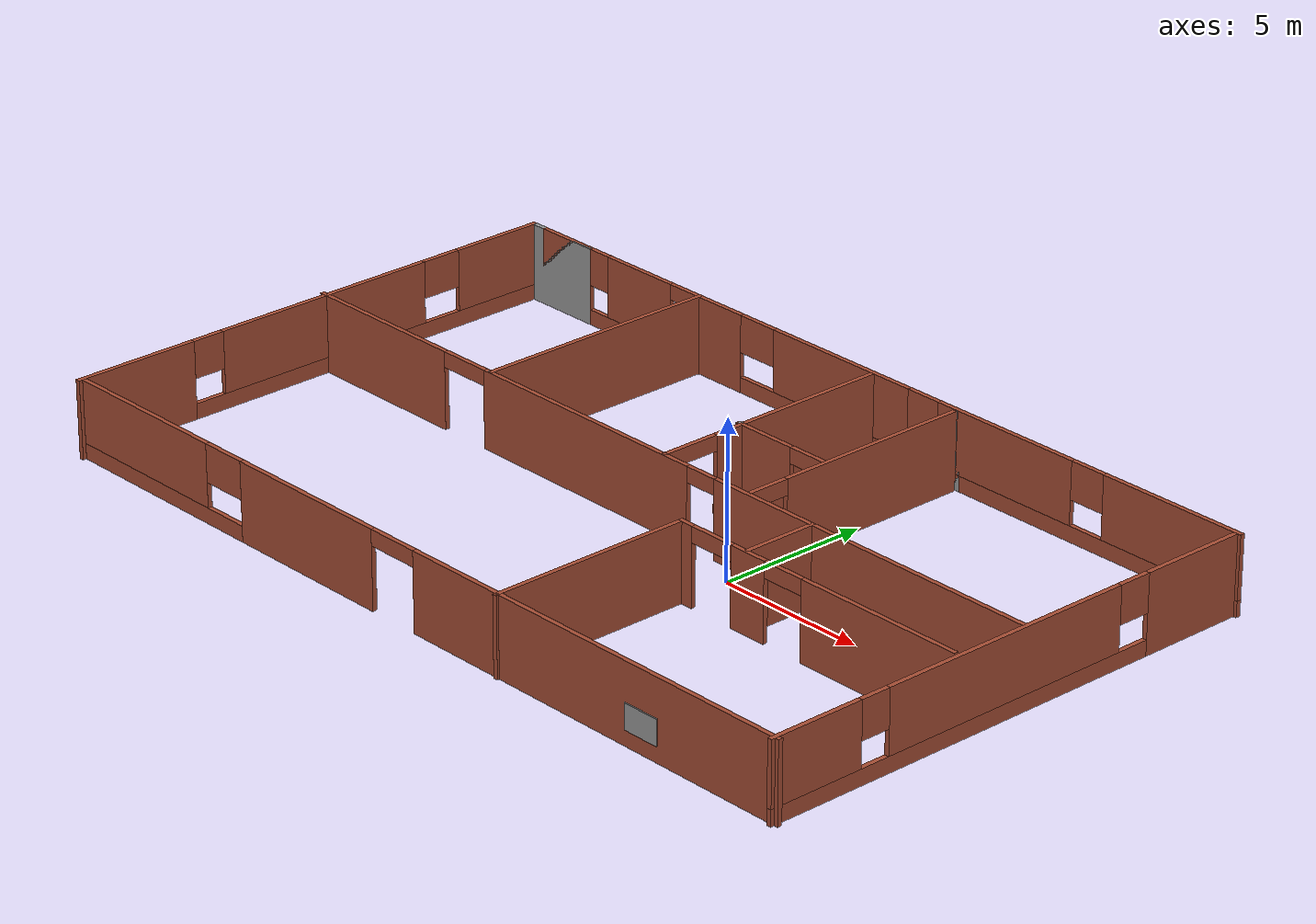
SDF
<?xml version='1.0'?>
<sdf version='1.7'>
  <model name='home'>
    <pose>-3.83983 0.260073 0 0 -0 0</pose>
    <link name='Wall_0'>
      <pose>0.359938 8.61553 0 0 -0 0</pose>
      <visual name='Wall_0_Visual_0'>
        <pose>-13.176 0 1.25 0 -0 0</pose>
        <geometry>
          <box>
            <size>2.14806 0.15 2.5</size>
          </box>
        </geometry>
        <material>
          <script>
            <uri>file://media/materials/scripts/gazebo.material</uri>
            <name>Gazebo/Bricks</name>
          </script>
          <ambient>1 1 1 1</ambient>
        </material>
        <meta>
          <layer>0</layer>
        </meta>
      </visual>
      <collision name='Wall_0_Collision_0'>
        <geometry>
          <box>
            <size>2.14806 0.15 2.5</size>
          </box>
        </geometry>
        <pose>-13.176 0 1.25 0 -0 0</pose>
      </collision>
      <visual name='Wall_0_Visual_1'>
        <pose>-6.35296 0 1.25 0 -0 0</pose>
        <geometry>
          <box>
            <size>1.86866 0.15 2.5</size>
          </box>
        </geometry>
        <material>
          <script>
            <uri>file://media/materials/scripts/gazebo.material</uri>
            <name>Gazebo/Bricks</name>
          </script>
          <ambient>1 1 1 1</ambient>
        </material>
        <meta>
          <layer>0</layer>
        </meta>
      </visual>
      <collision name='Wall_0_Collision_1'>
        <geometry>
          <box>
            <size>1.86866 0.15 2.5</size>
          </box>
        </geometry>
        <pose>-6.35296 0 1.25 0 -0 0</pose>
      </collision>
      <visual name='Wall_0_Visual_2'>
        <pose>-10.306 0 0.25 0 -0 0</pose>
        <geometry>
          <box>
            <size>3.59185 0.15 0.5</size>
          </box>
        </geometry>
        <material>
          <script>
            <uri>file://media/materials/scripts/gazebo.material</uri>
            <name>Gazebo/Bricks</name>
          </script>
          <ambient>1 1 1 1</ambient>
        </material>
        <meta>
          <layer>0</layer>
        </meta>
      </visual>
      <collision name='Wall_0_Collision_2'>
        <geometry>
          <box>
            <size>3.59185 0.15 0.5</size>
          </box>
        </geometry>
        <pose>-10.306 0 0.25 0 -0 0</pose>
      </collision>
      <visual name='Wall_0_Visual_3'>
        <pose>4.41569 0 0.25 0 -0 0</pose>
        <geometry>
          <box>
            <size>19.6686 0.15 0.5</size>
          </box>
        </geometry>
        <material>
          <script>
            <uri>file://media/materials/scripts/gazebo.material</uri>
            <name>Gazebo/Bricks</name>
          </script>
          <ambient>1 1 1 1</ambient>
        </material>
        <meta>
          <layer>0</layer>
        </meta>
      </visual>
      <collision name='Wall_0_Collision_3'>
        <geometry>
          <box>
            <size>19.6686 0.15 0.5</size>
          </box>
        </geometry>
        <pose>4.41569 0 0.25 0 -0 0</pose>
      </collision>
      <visual name='Wall_0_Visual_4'>
        <pose>-9.90602 0 1.5 0 -0 0</pose>
        <geometry>
          <box>
            <size>2.79185 0.15 2</size>
          </box>
        </geometry>
        <material>
          <script>
            <uri>file://media/materials/scripts/gazebo.material</uri>
            <name>Gazebo/Bricks</name>
          </script>
          <ambient>1 1 1 1</ambient>
        </material>
        <meta>
          <layer>0</layer>
        </meta>
      </visual>
      <collision name='Wall_0_Collision_4'>
        <geometry>
          <box>
            <size>2.79185 0.15 2</size>
          </box>
        </geometry>
        <pose>-9.90602 0 1.5 0 -0 0</pose>
      </collision>
      <visual name='Wall_0_Visual_5'>
        <pose>-9.90602 0 1.5 0 -0 0</pose>
        <geometry>
          <box>
            <size>2.79185 0.15 2</size>
          </box>
        </geometry>
        <material>
          <script>
            <uri>file://media/materials/scripts/gazebo.material</uri>
            <name>Gazebo/Bricks</name>
          </script>
          <ambient>1 1 1 1</ambient>
        </material>
        <meta>
          <layer>0</layer>
        </meta>
      </visual>
      <collision name='Wall_0_Collision_5'>
        <geometry>
          <box>
            <size>2.79185 0.15 2</size>
          </box>
        </geometry>
        <pose>-9.90602 0 1.5 0 -0 0</pose>
      </collision>
      <visual name='Wall_0_Visual_6'>
        <pose>-1.21828 0 1.5 0 -0 0</pose>
        <geometry>
          <box>
            <size>5.57656 0.15 2</size>
          </box>
        </geometry>
        <material>
          <script>
            <uri>file://media/materials/scripts/gazebo.material</uri>
            <name>Gazebo/Bricks</name>
          </script>
          <ambient>1 1 1 1</ambient>
        </material>
        <meta>
          <layer>0</layer>
        </meta>
      </visual>
      <collision name='Wall_0_Collision_6'>
        <geometry>
          <box>
            <size>5.57656 0.15 2</size>
          </box>
        </geometry>
        <pose>-1.21828 0 1.5 0 -0 0</pose>
      </collision>
      <visual name='Wall_0_Visual_7'>
        <pose>5.38737 0 1.5 0 -0 0</pose>
        <geometry>
          <box>
            <size>5.21864 0.15 2</size>
          </box>
        </geometry>
        <material>
          <script>
            <uri>file://media/materials/scripts/gazebo.material</uri>
            <name>Gazebo/Bricks</name>
          </script>
          <ambient>1 1 1 1</ambient>
        </material>
        <meta>
          <layer>0</layer>
        </meta>
      </visual>
      <collision name='Wall_0_Collision_7'>
        <geometry>
          <box>
            <size>5.21864 0.15 2</size>
          </box>
        </geometry>
        <pose>5.38737 0 1.5 0 -0 0</pose>
      </collision>
      <visual name='Wall_0_Visual_8'>
        <pose>11.7274 0 1.5 0 -0 0</pose>
        <geometry>
          <box>
            <size>5.04527 0.15 2</size>
          </box>
        </geometry>
        <material>
          <script>
            <uri>file://media/materials/scripts/gazebo.material</uri>
            <name>Gazebo/Bricks</name>
          </script>
          <ambient>1 1 1 1</ambient>
        </material>
        <meta>
          <layer>0</layer>
        </meta>
      </visual>
      <collision name='Wall_0_Collision_8'>
        <geometry>
          <box>
            <size>5.04527 0.15 2</size>
          </box>
        </geometry>
        <pose>11.7274 0 1.5 0 -0 0</pose>
      </collision>
      <visual name='Wall_0_Visual_9'>
        <pose>-11.7019 0 1.9 0 -0 0</pose>
        <geometry>
          <box>
            <size>0.8 0.15 1.2</size>
          </box>
        </geometry>
        <material>
          <script>
            <uri>file://media/materials/scripts/gazebo.material</uri>
            <name>Gazebo/Bricks</name>
          </script>
          <ambient>1 1 1 1</ambient>
        </material>
        <meta>
          <layer>0</layer>
        </meta>
      </visual>
      <collision name='Wall_0_Collision_9'>
        <geometry>
          <box>
            <size>0.8 0.15 1.2</size>
          </box>
        </geometry>
        <pose>-11.7019 0 1.9 0 -0 0</pose>
      </collision>
      <visual name='Wall_0_Visual_10'>
        <pose>-4.71259 0 1.9 0 -0 0</pose>
        <geometry>
          <box>
            <size>1.41206 0.15 1.2</size>
          </box>
        </geometry>
        <material>
          <script>
            <uri>file://media/materials/scripts/gazebo.material</uri>
            <name>Gazebo/Bricks</name>
          </script>
          <ambient>1 1 1 1</ambient>
        </material>
        <meta>
          <layer>0</layer>
        </meta>
      </visual>
      <collision name='Wall_0_Collision_10'>
        <geometry>
          <box>
            <size>1.41206 0.15 1.2</size>
          </box>
        </geometry>
        <pose>-4.71259 0 1.9 0 -0 0</pose>
      </collision>
      <visual name='Wall_0_Visual_11'>
        <pose>2.17402 0 1.9 0 -0 0</pose>
        <geometry>
          <box>
            <size>1.20804 0.15 1.2</size>
          </box>
        </geometry>
        <material>
          <script>
            <uri>file://media/materials/scripts/gazebo.material</uri>
            <name>Gazebo/Bricks</name>
          </script>
          <ambient>1 1 1 1</ambient>
        </material>
        <meta>
          <layer>0</layer>
        </meta>
      </visual>
      <collision name='Wall_0_Collision_11'>
        <geometry>
          <box>
            <size>1.20804 0.15 1.2</size>
          </box>
        </geometry>
        <pose>2.17402 0 1.9 0 -0 0</pose>
      </collision>
      <visual name='Wall_0_Visual_12'>
        <pose>8.60071 0 1.9 0 -0 0</pose>
        <geometry>
          <box>
            <size>1.20804 0.15 1.2</size>
          </box>
        </geometry>
        <material>
          <script>
            <uri>file://media/materials/scripts/gazebo.material</uri>
            <name>Gazebo/Bricks</name>
          </script>
          <ambient>1 1 1 1</ambient>
        </material>
        <meta>
          <layer>0</layer>
        </meta>
      </visual>
      <collision name='Wall_0_Collision_12'>
        <geometry>
          <box>
            <size>1.20804 0.15 1.2</size>
          </box>
        </geometry>
        <pose>8.60071 0 1.9 0 -0 0</pose>
      </collision>
      <visual name='Wall_0_Visual_13'>
        <pose>-7.89869 0 2.25 0 -0 0</pose>
        <geometry>
          <box>
            <size>1.2228 0.15 0.5</size>
          </box>
        </geometry>
        <material>
          <script>
            <uri>file://media/materials/scripts/gazebo.material</uri>
            <name>Gazebo/Bricks</name>
          </script>
          <ambient>1 1 1 1</ambient>
        </material>
        <meta>
          <layer>0</layer>
        </meta>
      </visual>
      <collision name='Wall_0_Collision_13'>
        <geometry>
          <box>
            <size>1.2228 0.15 0.5</size>
          </box>
        </geometry>
        <pose>-7.89869 0 2.25 0 -0 0</pose>
      </collision>
      <visual name='Wall_0_Visual_14'>
        <pose>-7.89869 0 2.25 0 -0 0</pose>
        <geometry>
          <box>
            <size>1.2228 0.15 0.5</size>
          </box>
        </geometry>
        <material>
          <script>
            <uri>file://media/materials/scripts/gazebo.material</uri>
            <name>Gazebo/Bricks</name>
          </script>
          <ambient>1 1 1 1</ambient>
        </material>
        <meta>
          <layer>0</layer>
        </meta>
      </visual>
      <collision name='Wall_0_Collision_14'>
        <geometry>
          <box>
            <size>1.2228 0.15 0.5</size>
          </box>
        </geometry>
        <pose>-7.89869 0 2.25 0 -0 0</pose>
      </collision>
    </link>
    <link name='Wall_1'>
      <pose>14.4329 -0 0 0 -0 -1.5708</pose>
      <visual name='Wall_1_Visual_0'>
        <pose>-6.87833 0 1.25 0 -0 0</pose>
        <geometry>
          <box>
            <size>3.6244 0.15 2.5</size>
          </box>
        </geometry>
        <material>
          <script>
            <uri>file://media/materials/scripts/gazebo.material</uri>
            <name>Gazebo/Bricks</name>
          </script>
          <ambient>1 1 1 1</ambient>
        </material>
        <meta>
          <layer>0</layer>
        </meta>
      </visual>
      <collision name='Wall_1_Collision_0'>
        <geometry>
          <box>
            <size>3.6244 0.15 2.5</size>
          </box>
        </geometry>
        <pose>-6.87833 0 1.25 0 -0 0</pose>
      </collision>
      <visual name='Wall_1_Visual_1'>
        <pose>1.8122 0 0.25 0 -0 0</pose>
        <geometry>
          <box>
            <size>13.7567 0.15 0.5</size>
          </box>
        </geometry>
        <material>
          <script>
            <uri>file://media/materials/scripts/gazebo.material</uri>
            <name>Gazebo/Bricks</name>
          </script>
          <ambient>1 1 1 1</ambient>
        </material>
        <meta>
          <layer>0</layer>
        </meta>
      </visual>
      <collision name='Wall_1_Collision_1'>
        <geometry>
          <box>
            <size>13.7567 0.15 0.5</size>
          </box>
        </geometry>
        <pose>1.8122 0 0.25 0 -0 0</pose>
      </collision>
      <visual name='Wall_1_Visual_2'>
        <pose>0.280547 0 1.5 0 -0 0</pose>
        <geometry>
          <box>
            <size>8.55372 0.15 2</size>
          </box>
        </geometry>
        <material>
          <script>
            <uri>file://media/materials/scripts/gazebo.material</uri>
            <name>Gazebo/Bricks</name>
          </script>
          <ambient>1 1 1 1</ambient>
        </material>
        <meta>
          <layer>0</layer>
        </meta>
      </visual>
      <collision name='Wall_1_Collision_2'>
        <geometry>
          <box>
            <size>8.55372 0.15 2</size>
          </box>
        </geometry>
        <pose>0.280547 0 1.5 0 -0 0</pose>
      </collision>
      <visual name='Wall_1_Visual_3'>
        <pose>7.11391 0 1.5 0 -0 0</pose>
        <geometry>
          <box>
            <size>3.15324 0.15 2</size>
          </box>
        </geometry>
        <material>
          <script>
            <uri>file://media/materials/scripts/gazebo.material</uri>
            <name>Gazebo/Bricks</name>
          </script>
          <ambient>1 1 1 1</ambient>
        </material>
        <meta>
          <layer>0</layer>
        </meta>
      </visual>
      <collision name='Wall_1_Collision_3'>
        <geometry>
          <box>
            <size>3.15324 0.15 2</size>
          </box>
        </geometry>
        <pose>7.11391 0 1.5 0 -0 0</pose>
      </collision>
      <visual name='Wall_1_Visual_4'>
        <pose>-4.53122 0 1.9 0 -0 0</pose>
        <geometry>
          <box>
            <size>1.06982 0.15 1.2</size>
          </box>
        </geometry>
        <material>
          <script>
            <uri>file://media/materials/scripts/gazebo.material</uri>
            <name>Gazebo/Bricks</name>
          </script>
          <ambient>1 1 1 1</ambient>
        </material>
        <meta>
          <layer>0</layer>
        </meta>
      </visual>
      <collision name='Wall_1_Collision_4'>
        <geometry>
          <box>
            <size>1.06982 0.15 1.2</size>
          </box>
        </geometry>
        <pose>-4.53122 0 1.9 0 -0 0</pose>
      </collision>
      <visual name='Wall_1_Visual_5'>
        <pose>5.04735 0 1.9 0 -0 0</pose>
        <geometry>
          <box>
            <size>0.979879 0.15 1.2</size>
          </box>
        </geometry>
        <material>
          <script>
            <uri>file://media/materials/scripts/gazebo.material</uri>
            <name>Gazebo/Bricks</name>
          </script>
          <ambient>1 1 1 1</ambient>
        </material>
        <meta>
          <layer>0</layer>
        </meta>
      </visual>
      <collision name='Wall_1_Collision_5'>
        <geometry>
          <box>
            <size>0.979879 0.15 1.2</size>
          </box>
        </geometry>
        <pose>5.04735 0 1.9 0 -0 0</pose>
      </collision>
    </link>
    <link name='Wall_11'>
      <collision name='Wall_11_Collision'>
        <geometry>
          <box>
            <size>0.16 0.15 2.5</size>
          </box>
        </geometry>
        <pose>0 0 1.25 0 -0 0</pose>
      </collision>
      <visual name='Wall_11_Visual'>
        <pose>0 0 1.25 0 -0 0</pose>
        <geometry>
          <box>
            <size>0.16 0.15 2.5</size>
          </box>
        </geometry>
        <material>
          <script>
            <uri>file://media/materials/scripts/gazebo.material</uri>
            <name>Gazebo/Grey</name>
          </script>
          <ambient>1 1 1 1</ambient>
        </material>
        <meta>
          <layer>0</layer>
        </meta>
      </visual>
      <pose>3.96813 8.61553 0 0 -0 0</pose>
    </link>
    <link name='Wall_17'>
      <pose>9.03233 -1.96447 0 0 -0 0</pose>
      <visual name='Wall_17_Visual_0'>
        <pose>-4.97826 0 1.25 0 -0 0</pose>
        <geometry>
          <box>
            <size>0.543472 0.15 2.5</size>
          </box>
        </geometry>
        <material>
          <script>
            <uri>file://media/materials/scripts/gazebo.material</uri>
            <name>Gazebo/Bricks</name>
          </script>
          <ambient>1 1 1 1</ambient>
        </material>
        <meta>
          <layer>0</layer>
        </meta>
      </visual>
      <collision name='Wall_17_Collision_0'>
        <geometry>
          <box>
            <size>0.543472 0.15 2.5</size>
          </box>
        </geometry>
        <pose>-4.97826 0 1.25 0 -0 0</pose>
      </collision>
      <visual name='Wall_17_Visual_1'>
        <pose>-2.51429 0 1.25 0 -0 0</pose>
        <geometry>
          <box>
            <size>1.29038 0.15 2.5</size>
          </box>
        </geometry>
        <material>
          <script>
            <uri>file://media/materials/scripts/gazebo.material</uri>
            <name>Gazebo/Bricks</name>
          </script>
          <ambient>1 1 1 1</ambient>
        </material>
        <meta>
          <layer>0</layer>
        </meta>
      </visual>
      <collision name='Wall_17_Collision_1'>
        <geometry>
          <box>
            <size>1.29038 0.15 2.5</size>
          </box>
        </geometry>
        <pose>-2.51429 0 1.25 0 -0 0</pose>
      </collision>
      <visual name='Wall_17_Visual_2'>
        <pose>2.40495 0 1.25 0 -0 0</pose>
        <geometry>
          <box>
            <size>5.6901 0.15 2.5</size>
          </box>
        </geometry>
        <material>
          <script>
            <uri>file://media/materials/scripts/gazebo.material</uri>
            <name>Gazebo/Bricks</name>
          </script>
          <ambient>1 1 1 1</ambient>
        </material>
        <meta>
          <layer>0</layer>
        </meta>
      </visual>
      <collision name='Wall_17_Collision_2'>
        <geometry>
          <box>
            <size>5.6901 0.15 2.5</size>
          </box>
        </geometry>
        <pose>2.40495 0 1.25 0 -0 0</pose>
      </collision>
      <visual name='Wall_17_Visual_3'>
        <pose>-3.933 0 2.25 0 -0 0</pose>
        <geometry>
          <box>
            <size>1.54705 0.15 0.5</size>
          </box>
        </geometry>
        <material>
          <script>
            <uri>file://media/materials/scripts/gazebo.material</uri>
            <name>Gazebo/Bricks</name>
          </script>
          <ambient>1 1 1 1</ambient>
        </material>
        <meta>
          <layer>0</layer>
        </meta>
      </visual>
      <collision name='Wall_17_Collision_3'>
        <geometry>
          <box>
            <size>1.54705 0.15 0.5</size>
          </box>
        </geometry>
        <pose>-3.933 0 2.25 0 -0 0</pose>
      </collision>
      <visual name='Wall_17_Visual_4'>
        <pose>-1.1546 0 2.25 0 -0 0</pose>
        <geometry>
          <box>
            <size>1.429 0.15 0.5</size>
          </box>
        </geometry>
        <material>
          <script>
            <uri>file://media/materials/scripts/gazebo.material</uri>
            <name>Gazebo/Bricks</name>
          </script>
          <ambient>1 1 1 1</ambient>
        </material>
        <meta>
          <layer>0</layer>
        </meta>
      </visual>
      <collision name='Wall_17_Collision_4'>
        <geometry>
          <box>
            <size>1.429 0.15 0.5</size>
          </box>
        </geometry>
        <pose>-1.1546 0 2.25 0 -0 0</pose>
      </collision>
    </link>
    <link name='Wall_19'>
      <collision name='Wall_19_Collision'>
        <geometry>
          <box>
            <size>2.5 0.15 2.5</size>
          </box>
        </geometry>
        <pose>0 0 1.25 0 -0 0</pose>
      </collision>
      <visual name='Wall_19_Visual'>
        <pose>0 0 1.25 0 -0 0</pose>
        <geometry>
          <box>
            <size>2.5 0.15 2.5</size>
          </box>
        </geometry>
        <material>
          <script>
            <uri>file://media/materials/scripts/gazebo.material</uri>
            <name>Gazebo/Bricks</name>
          </script>
          <ambient>1 1 1 1</ambient>
        </material>
        <meta>
          <layer>0</layer>
        </meta>
      </visual>
      <pose>6.39653 -0.706073 0 0 -0 -1.5708</pose>
    </link>
    <link name='Wall_2'>
      <pose>0.126872 -8.49658 0 0 -0 3.14159</pose>
      <visual name='Wall_2_Visual_0'>
        <pose>-7.39469 0 1.25 0 -0 0</pose>
        <geometry>
          <box>
            <size>14.2106 0.15 2.5</size>
          </box>
        </geometry>
        <material>
          <script>
            <uri>file://media/materials/scripts/gazebo.material</uri>
            <name>Gazebo/Bricks</name>
          </script>
          <ambient>1 1 1 1</ambient>
        </material>
        <meta>
          <layer>0</layer>
        </meta>
      </visual>
      <collision name='Wall_2_Collision_0'>
        <geometry>
          <box>
            <size>14.2106 0.15 2.5</size>
          </box>
        </geometry>
        <pose>-7.39469 0 1.25 0 -0 0</pose>
      </collision>
      <visual name='Wall_2_Visual_1'>
        <pose>4.3199 0 1.25 0 -0 0</pose>
        <geometry>
          <box>
            <size>5.72155 0.15 2.5</size>
          </box>
        </geometry>
        <material>
          <script>
            <uri>file://media/materials/scripts/gazebo.material</uri>
            <name>Gazebo/Bricks</name>
          </script>
          <ambient>1 1 1 1</ambient>
        </material>
        <meta>
          <layer>0</layer>
        </meta>
      </visual>
      <collision name='Wall_2_Collision_1'>
        <geometry>
          <box>
            <size>5.72155 0.15 2.5</size>
          </box>
        </geometry>
        <pose>4.3199 0 1.25 0 -0 0</pose>
      </collision>
      <visual name='Wall_2_Visual_2'>
        <pose>10.8403 0 0.25 0 -0 0</pose>
        <geometry>
          <box>
            <size>7.31932 0.15 0.5</size>
          </box>
        </geometry>
        <material>
          <script>
            <uri>file://media/materials/scripts/gazebo.material</uri>
            <name>Gazebo/Bricks</name>
          </script>
          <ambient>1 1 1 1</ambient>
        </material>
        <meta>
          <layer>0</layer>
        </meta>
      </visual>
      <collision name='Wall_2_Collision_2'>
        <geometry>
          <box>
            <size>7.31932 0.15 0.5</size>
          </box>
        </geometry>
        <pose>10.8403 0 0.25 0 -0 0</pose>
      </collision>
      <visual name='Wall_2_Visual_3'>
        <pose>11.6116 0 1.5 0 -0 0</pose>
        <geometry>
          <box>
            <size>5.77687 0.15 2</size>
          </box>
        </geometry>
        <material>
          <script>
            <uri>file://media/materials/scripts/gazebo.material</uri>
            <name>Gazebo/Bricks</name>
          </script>
          <ambient>1 1 1 1</ambient>
        </material>
        <meta>
          <layer>0</layer>
        </meta>
      </visual>
      <collision name='Wall_2_Collision_3'>
        <geometry>
          <box>
            <size>5.77687 0.15 2</size>
          </box>
        </geometry>
        <pose>11.6116 0 1.5 0 -0 0</pose>
      </collision>
      <visual name='Wall_2_Visual_4'>
        <pose>7.9519 0 1.9 0 -0 0</pose>
        <geometry>
          <box>
            <size>1.54245 0.15 1.2</size>
          </box>
        </geometry>
        <material>
          <script>
            <uri>file://media/materials/scripts/gazebo.material</uri>
            <name>Gazebo/Bricks</name>
          </script>
          <ambient>1 1 1 1</ambient>
        </material>
        <meta>
          <layer>0</layer>
        </meta>
      </visual>
      <collision name='Wall_2_Collision_4'>
        <geometry>
          <box>
            <size>1.54245 0.15 1.2</size>
          </box>
        </geometry>
        <pose>7.9519 0 1.9 0 -0 0</pose>
      </collision>
      <visual name='Wall_2_Visual_5'>
        <pose>0.584873 0 2.25 0 -0 0</pose>
        <geometry>
          <box>
            <size>1.74852 0.15 0.5</size>
          </box>
        </geometry>
        <material>
          <script>
            <uri>file://media/materials/scripts/gazebo.material</uri>
            <name>Gazebo/Bricks</name>
          </script>
          <ambient>1 1 1 1</ambient>
        </material>
        <meta>
          <layer>0</layer>
        </meta>
      </visual>
      <collision name='Wall_2_Collision_5'>
        <geometry>
          <box>
            <size>1.74852 0.15 0.5</size>
          </box>
        </geometry>
        <pose>0.584873 0 2.25 0 -0 0</pose>
      </collision>
    </link>
    <link name='Wall_21'>
      <pose>0.471727 4.56553 0 0 -0 -1.5708</pose>
      <visual name='Wall_21_Visual_0'>
        <pose>-0.9798 0 1.25 0 -0 0</pose>
        <geometry>
          <box>
            <size>6.2904 0.15 2.5</size>
          </box>
        </geometry>
        <material>
          <script>
            <uri>file://media/materials/scripts/gazebo.material</uri>
            <name>Gazebo/Bricks</name>
          </script>
          <ambient>1 1 1 1</ambient>
        </material>
        <meta>
          <layer>0</layer>
        </meta>
      </visual>
      <collision name='Wall_21_Collision_0'>
        <geometry>
          <box>
            <size>6.2904 0.15 2.5</size>
          </box>
        </geometry>
        <pose>-0.9798 0 1.25 0 -0 0</pose>
      </collision>
      <visual name='Wall_21_Visual_1'>
        <pose>4.0713 0 1.25 0 -0 0</pose>
        <geometry>
          <box>
            <size>0.1074 0.15 2.5</size>
          </box>
        </geometry>
        <material>
          <script>
            <uri>file://media/materials/scripts/gazebo.material</uri>
            <name>Gazebo/Bricks</name>
          </script>
          <ambient>1 1 1 1</ambient>
        </material>
        <meta>
          <layer>0</layer>
        </meta>
      </visual>
      <collision name='Wall_21_Collision_1'>
        <geometry>
          <box>
            <size>0.1074 0.15 2.5</size>
          </box>
        </geometry>
        <pose>4.0713 0 1.25 0 -0 0</pose>
      </collision>
      <visual name='Wall_21_Visual_2'>
        <pose>3.0915 0 2.25 0 -0 0</pose>
        <geometry>
          <box>
            <size>1.8522 0.15 0.5</size>
          </box>
        </geometry>
        <material>
          <script>
            <uri>file://media/materials/scripts/gazebo.material</uri>
            <name>Gazebo/Bricks</name>
          </script>
          <ambient>1 1 1 1</ambient>
        </material>
        <meta>
          <layer>0</layer>
        </meta>
      </visual>
      <collision name='Wall_21_Collision_2'>
        <geometry>
          <box>
            <size>1.8522 0.15 0.5</size>
          </box>
        </geometry>
        <pose>3.0915 0 2.25 0 -0 0</pose>
      </collision>
    </link>
    <link name='Wall_24'>
      <collision name='Wall_24_Collision'>
        <geometry>
          <box>
            <size>8.25 0.15 2.5</size>
          </box>
        </geometry>
        <pose>0 0 1.25 0 -0 0</pose>
      </collision>
      <visual name='Wall_24_Visual'>
        <pose>0 0 1.25 0 -0 0</pose>
        <geometry>
          <box>
            <size>8.25 0.15 2.5</size>
          </box>
        </geometry>
        <material>
          <script>
            <uri>file://media/materials/scripts/gazebo.material</uri>
            <name>Gazebo/Bricks</name>
          </script>
          <ambient>1 1 1 1</ambient>
        </material>
        <meta>
          <layer>0</layer>
        </meta>
      </visual>
      <pose>-6.93427 4.56553 0 0 -0 -1.5708</pose>
    </link>
    <link name='Wall_25'>
      <collision name='Wall_25_Collision'>
        <geometry>
          <box>
            <size>0.16 0.15 2.5</size>
          </box>
        </geometry>
        <pose>0 0 1.25 0 -0 0</pose>
      </collision>
      <visual name='Wall_25_Visual'>
        <pose>0 0 1.25 0 -0 0</pose>
        <geometry>
          <box>
            <size>0.16 0.15 2.5</size>
          </box>
        </geometry>
        <material>
          <script>
            <uri>file://media/materials/scripts/gazebo.material</uri>
            <name>Gazebo/Grey</name>
          </script>
          <ambient>1 1 1 1</ambient>
        </material>
        <meta>
          <layer>0</layer>
        </meta>
      </visual>
      <pose>-6.92927 0.515527 0 0 -0 0</pose>
    </link>
    <link name='Wall_27'>
      <collision name='Wall_27_Collision'>
        <geometry>
          <box>
            <size>0.16 0.15 2.5</size>
          </box>
        </geometry>
        <pose>0 0 1.25 0 -0 0</pose>
      </collision>
      <visual name='Wall_27_Visual'>
        <pose>0 0 1.25 0 -0 0</pose>
        <geometry>
          <box>
            <size>0.16 0.15 2.5</size>
          </box>
        </geometry>
        <material>
          <script>
            <uri>file://media/materials/scripts/gazebo.material</uri>
            <name>Gazebo/Grey</name>
          </script>
          <ambient>1 1 1 1</ambient>
        </material>
        <meta>
          <layer>0</layer>
        </meta>
      </visual>
      <pose>0.370927 3.43133 0 0 -0 0</pose>
    </link>
    <link name='Wall_28'>
      <pose>2.05093 3.43133 0 0 -0 0</pose>
      <visual name='Wall_28_Visual_0'>
        <pose>-0.651557 0 1.25 0 -0 0</pose>
        <geometry>
          <box>
            <size>2.19689 0.15 2.5</size>
          </box>
        </geometry>
        <material>
          <script>
            <uri>file://media/materials/scripts/gazebo.material</uri>
            <name>Gazebo/Bricks</name>
          </script>
          <ambient>1 1 1 1</ambient>
        </material>
        <meta>
          <layer>0</layer>
        </meta>
      </visual>
      <collision name='Wall_28_Collision_0'>
        <geometry>
          <box>
            <size>2.19689 0.15 2.5</size>
          </box>
        </geometry>
        <pose>-0.651557 0 1.25 0 -0 0</pose>
      </collision>
      <visual name='Wall_28_Visual_1'>
        <pose>1.09844 0 2.25 0 -0 0</pose>
        <geometry>
          <box>
            <size>1.30311 0.15 0.5</size>
          </box>
        </geometry>
        <material>
          <script>
            <uri>file://media/materials/scripts/gazebo.material</uri>
            <name>Gazebo/Bricks</name>
          </script>
          <ambient>1 1 1 1</ambient>
        </material>
        <meta>
          <layer>0</layer>
        </meta>
      </visual>
      <collision name='Wall_28_Collision_1'>
        <geometry>
          <box>
            <size>1.30311 0.15 0.5</size>
          </box>
        </geometry>
        <pose>1.09844 0 2.25 0 -0 0</pose>
      </collision>
    </link>
    <link name='Wall_3'>
      <pose>-14.4171 -0 0 0 -0 1.5708</pose>
      <visual name='Wall_3_Visual_0'>
        <pose>-6.61924 0 1.25 0 -0 0</pose>
        <geometry>
          <box>
            <size>4.14258 0.15 2.5</size>
          </box>
        </geometry>
        <material>
          <script>
            <uri>file://media/materials/scripts/gazebo.material</uri>
            <name>Gazebo/Bricks</name>
          </script>
          <ambient>1 1 1 1</ambient>
        </material>
        <meta>
          <layer>0</layer>
        </meta>
      </visual>
      <collision name='Wall_3_Collision_0'>
        <geometry>
          <box>
            <size>4.14258 0.15 2.5</size>
          </box>
        </geometry>
        <pose>-6.61924 0 1.25 0 -0 0</pose>
      </collision>
      <visual name='Wall_3_Visual_1'>
        <pose>2.07129 0 0.25 0 -0 0</pose>
        <geometry>
          <box>
            <size>13.2385 0.15 0.5</size>
          </box>
        </geometry>
        <material>
          <script>
            <uri>file://media/materials/scripts/gazebo.material</uri>
            <name>Gazebo/Bricks</name>
          </script>
          <ambient>1 1 1 1</ambient>
        </material>
        <meta>
          <layer>0</layer>
        </meta>
      </visual>
      <collision name='Wall_3_Collision_1'>
        <geometry>
          <box>
            <size>13.2385 0.15 0.5</size>
          </box>
        </geometry>
        <pose>2.07129 0 0.25 0 -0 0</pose>
      </collision>
      <visual name='Wall_3_Visual_2'>
        <pose>0.349031 0 1.5 0 -0 0</pose>
        <geometry>
          <box>
            <size>7.65432 0.15 2</size>
          </box>
        </geometry>
        <material>
          <script>
            <uri>file://media/materials/scripts/gazebo.material</uri>
            <name>Gazebo/Bricks</name>
          </script>
          <ambient>1 1 1 1</ambient>
        </material>
        <meta>
          <layer>0</layer>
        </meta>
      </visual>
      <collision name='Wall_3_Collision_2'>
        <geometry>
          <box>
            <size>7.65432 0.15 2</size>
          </box>
        </geometry>
        <pose>0.349031 0 1.5 0 -0 0</pose>
      </collision>
      <visual name='Wall_3_Visual_3'>
        <pose>7.10318 0 1.5 0 -0 0</pose>
        <geometry>
          <box>
            <size>3.1747 0.15 2</size>
          </box>
        </geometry>
        <material>
          <script>
            <uri>file://media/materials/scripts/gazebo.material</uri>
            <name>Gazebo/Bricks</name>
          </script>
          <ambient>1 1 1 1</ambient>
        </material>
        <meta>
          <layer>0</layer>
        </meta>
      </visual>
      <collision name='Wall_3_Collision_3'>
        <geometry>
          <box>
            <size>3.1747 0.15 2</size>
          </box>
        </geometry>
        <pose>7.10318 0 1.5 0 -0 0</pose>
      </collision>
      <visual name='Wall_3_Visual_4'>
        <pose>-4.01304 0 1.9 0 -0 0</pose>
        <geometry>
          <box>
            <size>1.06982 0.15 1.2</size>
          </box>
        </geometry>
        <material>
          <script>
            <uri>file://media/materials/scripts/gazebo.material</uri>
            <name>Gazebo/Bricks</name>
          </script>
          <ambient>1 1 1 1</ambient>
        </material>
        <meta>
          <layer>0</layer>
        </meta>
      </visual>
      <collision name='Wall_3_Collision_4'>
        <geometry>
          <box>
            <size>1.06982 0.15 1.2</size>
          </box>
        </geometry>
        <pose>-4.01304 0 1.9 0 -0 0</pose>
      </collision>
      <visual name='Wall_3_Visual_5'>
        <pose>4.84601 0 1.9 0 -0 0</pose>
        <geometry>
          <box>
            <size>1.33964 0.15 1.2</size>
          </box>
        </geometry>
        <material>
          <script>
            <uri>file://media/materials/scripts/gazebo.material</uri>
            <name>Gazebo/Bricks</name>
          </script>
          <ambient>1 1 1 1</ambient>
        </material>
        <meta>
          <layer>0</layer>
        </meta>
      </visual>
      <collision name='Wall_3_Collision_5'>
        <geometry>
          <box>
            <size>1.33964 0.15 1.2</size>
          </box>
        </geometry>
        <pose>4.84601 0 1.9 0 -0 0</pose>
      </collision>
    </link>
    <link name='Wall_30'>
      <pose>3.85791 4.49232 0 0 -0 1.5708</pose>
      <visual name='Wall_30_Visual_0'>
        <pose>-3.98345 0 1.25 0 -0 0</pose>
        <geometry>
          <box>
            <size>0.0331 0.15 2.5</size>
          </box>
        </geometry>
        <material>
          <script>
            <uri>file://media/materials/scripts/gazebo.material</uri>
            <name>Gazebo/Bricks</name>
          </script>
          <ambient>1 1 1 1</ambient>
        </material>
        <meta>
          <layer>0</layer>
        </meta>
      </visual>
      <collision name='Wall_30_Collision_0'>
        <geometry>
          <box>
            <size>0.0331 0.15 2.5</size>
          </box>
        </geometry>
        <pose>-3.98345 0 1.25 0 -0 0</pose>
      </collision>
      <visual name='Wall_30_Visual_1'>
        <pose>0.70715 0 1.25 0 -0 0</pose>
        <geometry>
          <box>
            <size>6.5857 0.15 2.5</size>
          </box>
        </geometry>
        <material>
          <script>
            <uri>file://media/materials/scripts/gazebo.material</uri>
            <name>Gazebo/Bricks</name>
          </script>
          <ambient>1 1 1 1</ambient>
        </material>
        <meta>
          <layer>0</layer>
        </meta>
      </visual>
      <collision name='Wall_30_Collision_1'>
        <geometry>
          <box>
            <size>6.5857 0.15 2.5</size>
          </box>
        </geometry>
        <pose>0.70715 0 1.25 0 -0 0</pose>
      </collision>
      <visual name='Wall_30_Visual_2'>
        <pose>-3.2763 0 2.25 0 -0 0</pose>
        <geometry>
          <box>
            <size>1.3812 0.15 0.5</size>
          </box>
        </geometry>
        <material>
          <script>
            <uri>file://media/materials/scripts/gazebo.material</uri>
            <name>Gazebo/Bricks</name>
          </script>
          <ambient>1 1 1 1</ambient>
        </material>
        <meta>
          <layer>0</layer>
        </meta>
      </visual>
      <collision name='Wall_30_Collision_2'>
        <geometry>
          <box>
            <size>1.3812 0.15 0.5</size>
          </box>
        </geometry>
        <pose>-3.2763 0 2.25 0 -0 0</pose>
      </collision>
    </link>
    <link name='Wall_33'>
      <collision name='Wall_33_Collision'>
        <geometry>
          <box>
            <size>6.75 0.15 2.5</size>
          </box>
        </geometry>
        <pose>0 0 1.25 0 -0 0</pose>
      </collision>
      <visual name='Wall_33_Visual'>
        <pose>0 0 1.25 0 -0 0</pose>
        <geometry>
          <box>
            <size>6.75 0.15 2.5</size>
          </box>
        </geometry>
        <material>
          <script>
            <uri>file://media/materials/scripts/gazebo.material</uri>
            <name>Gazebo/Bricks</name>
          </script>
          <ambient>1 1 1 1</ambient>
        </material>
        <meta>
          <layer>0</layer>
        </meta>
      </visual>
      <pose>3.85733 -5.26447 0 0 -0 -1.5708</pose>
    </link>
    <link name='Wall_4'>
      <collision name='Wall_4_Collision'>
        <geometry>
          <box>
            <size>2.75 0.15 2.5</size>
          </box>
        </geometry>
        <pose>0 0 1.25 0 -0 0</pose>
      </collision>
      <visual name='Wall_4_Visual'>
        <pose>0 0 1.25 0 -0 0</pose>
        <geometry>
          <box>
            <size>2.75 0.15 2.5</size>
          </box>
        </geometry>
        <material>
          <script>
            <uri>file://media/materials/scripts/gazebo.material</uri>
            <name>Gazebo/Grey</name>
          </script>
          <ambient>1 1 1 1</ambient>
        </material>
        <meta>
          <layer>0</layer>
        </meta>
      </visual>
      <pose>-13.1171 8.61553 0 0 -0 0</pose>
    </link>
    <link name='Wall_7'>
      <pose>-0.126873 0.468927 0 0 -0 0</pose>
      <visual name='Wall_7_Visual_0'>
        <pose>-11.6457 0 1.25 0 -0 0</pose>
        <geometry>
          <box>
            <size>5.7085 0.15 2.5</size>
          </box>
        </geometry>
        <material>
          <script>
            <uri>file://media/materials/scripts/gazebo.material</uri>
            <name>Gazebo/Bricks</name>
          </script>
          <ambient>1 1 1 1</ambient>
        </material>
        <meta>
          <layer>0</layer>
        </meta>
      </visual>
      <collision name='Wall_7_Collision_0'>
        <geometry>
          <box>
            <size>5.7085 0.15 2.5</size>
          </box>
        </geometry>
        <pose>-11.6457 0 1.25 0 -0 0</pose>
      </collision>
      <visual name='Wall_7_Visual_1'>
        <pose>-2.72542 0 1.25 0 -0 0</pose>
        <geometry>
          <box>
            <size>8.63937 0.15 2.5</size>
          </box>
        </geometry>
        <material>
          <script>
            <uri>file://media/materials/scripts/gazebo.material</uri>
            <name>Gazebo/Bricks</name>
          </script>
          <ambient>1 1 1 1</ambient>
        </material>
        <meta>
          <layer>0</layer>
        </meta>
      </visual>
      <collision name='Wall_7_Collision_1'>
        <geometry>
          <box>
            <size>8.63937 0.15 2.5</size>
          </box>
        </geometry>
        <pose>-2.72542 0 1.25 0 -0 0</pose>
      </collision>
      <visual name='Wall_7_Visual_2'>
        <pose>8.60089 0 1.25 0 -0 0</pose>
        <geometry>
          <box>
            <size>11.7982 0.15 2.5</size>
          </box>
        </geometry>
        <material>
          <script>
            <uri>file://media/materials/scripts/gazebo.material</uri>
            <name>Gazebo/Bricks</name>
          </script>
          <ambient>1 1 1 1</ambient>
        </material>
        <meta>
          <layer>0</layer>
        </meta>
      </visual>
      <collision name='Wall_7_Collision_2'>
        <geometry>
          <box>
            <size>11.7982 0.15 2.5</size>
          </box>
        </geometry>
        <pose>8.60089 0 1.25 0 -0 0</pose>
      </collision>
      <visual name='Wall_7_Visual_3'>
        <pose>-7.9183 0 2.25 0 -0 0</pose>
        <geometry>
          <box>
            <size>1.7464 0.15 0.5</size>
          </box>
        </geometry>
        <material>
          <script>
            <uri>file://media/materials/scripts/gazebo.material</uri>
            <name>Gazebo/Bricks</name>
          </script>
          <ambient>1 1 1 1</ambient>
        </material>
        <meta>
          <layer>0</layer>
        </meta>
      </visual>
      <collision name='Wall_7_Collision_3'>
        <geometry>
          <box>
            <size>1.7464 0.15 0.5</size>
          </box>
        </geometry>
        <pose>-7.9183 0 2.25 0 -0 0</pose>
      </collision>
      <visual name='Wall_7_Visual_4'>
        <pose>2.14802 0 2.25 0 -0 0</pose>
        <geometry>
          <box>
            <size>1.10752 0.15 0.5</size>
          </box>
        </geometry>
        <material>
          <script>
            <uri>file://media/materials/scripts/gazebo.material</uri>
            <name>Gazebo/Bricks</name>
          </script>
          <ambient>1 1 1 1</ambient>
        </material>
        <meta>
          <layer>0</layer>
        </meta>
      </visual>
      <collision name='Wall_7_Collision_4'>
        <geometry>
          <box>
            <size>1.10752 0.15 0.5</size>
          </box>
        </geometry>
        <pose>2.14802 0 2.25 0 -0 0</pose>
      </collision>
    </link>
    <link name='Window_1'>
      <collision name='Window_1_Collision'>
        <geometry>
          <box>
            <size>1.2497 0.2 0.8</size>
          </box>
        </geometry>
        <pose>0 0 0.4 0 -0 0</pose>
      </collision>
      <visual name='Window_1_Visual'>
        <pose>0 0 0.4 0 -0 0</pose>
        <geometry>
          <box>
            <size>1.2497 0.2 0.8</size>
          </box>
        </geometry>
        <material>
          <script>
            <uri>file://media/materials/scripts/gazebo.material</uri>
            <name>Gazebo/Grey</name>
          </script>
        </material>
      </visual>
      <pose>9.54177 -8.50731 0.5 0 -0 0</pose>
    </link>
    <static>1</static>
  </model>
</sdf>
